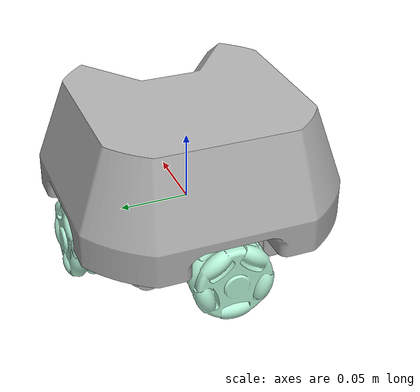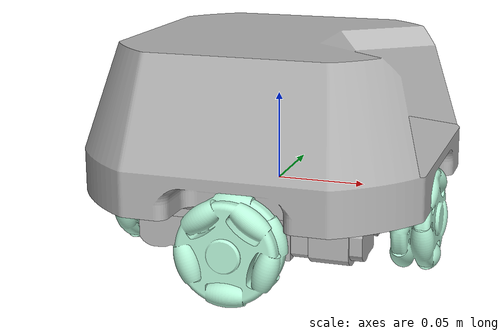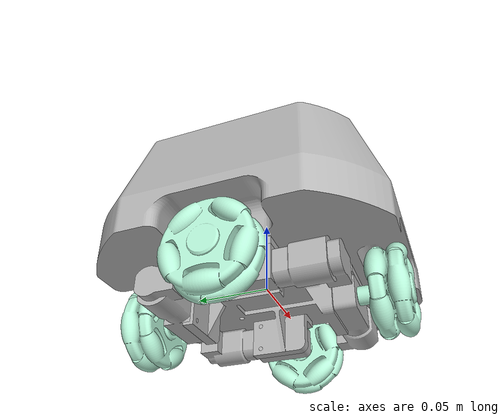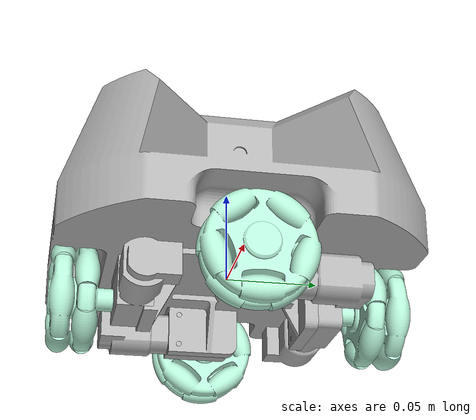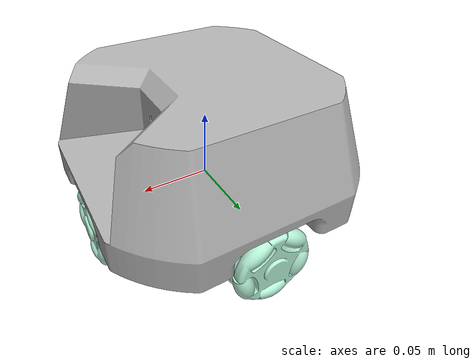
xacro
<?xml version="1.0" ?>
<robot name="mini_omni" xmlns:xacro="http://www.ros.org/wiki/xacro">
  <material name="silver">
    <color rgba="0.700 0.700 0.700 1.000"/>
  </material>
  <material name="green">
    <color rgba="0.71 0.95 0.84 1.0"/>
  </material>
  <link name="base_link">
    <inertial>
      <origin xyz="-0.005145812541385679 -7.638930890681272e-07 0.03779646096221236" rpy="0 0 0"/>
      <mass value="17.060669540235605"/>
      <inertia ixx="0.051413" iyy="0.045565" izz="0.077797" ixy="0.0" iyz="-1e-06" ixz="0.001401"/>
    </inertial>
    <visual>
      <origin xyz="0 0 0" rpy="0 0 0"/>
      <geometry>
        <mesh filename="package://mini_omni/meshes/base_link.stl" scale="0.001 0.001 0.001"/>
      </geometry>
      <material name="silver"/>
    </visual>
    <collision>
      <origin xyz="0 0 0" rpy="0 0 0"/>
      <geometry>
        <mesh filename="package://mini_omni/meshes/base_link.stl" scale="0.001 0.001 0.001"/>
      </geometry>
    </collision>
  </link>

  <link name="m1_1">
    <inertial>
      <origin xyz="0.01054921147026934 0.008028074931659187 -0.008599978168810276" rpy="0 0 0"/>
      <mass value="0.25963404717991184"/>
      <inertia ixx="0.000137" iyy="2e-05" izz="0.000137" ixy="8e-06" iyz="-0.0" ixz="-0.0"/>
    </inertial>
    <visual>
      <origin xyz="-0.03994 -0.0198 0.0073" rpy="0 0 0"/>
      <geometry>
        <mesh filename="package://mini_omni/meshes/m1_1.stl" scale="0.001 0.001 0.001"/>
      </geometry>
      <material name="silver"/>
    </visual>
    <collision>
      <origin xyz="-0.03994 -0.0198 0.0073" rpy="0 0 0"/>
      <geometry>
        <mesh filename="package://mini_omni/meshes/m1_1.stl" scale="0.001 0.001 0.001"/>
      </geometry>
    </collision>
  </link>

  <link name="m2_1">
    <inertial>
      <origin xyz="0.008028074931659034 -0.010549211470269486 -0.00859997816881029" rpy="0 0 0"/>
      <mass value="0.25963404717991184"/>
      <inertia ixx="2e-05" iyy="0.000137" izz="0.000137" ixy="-8e-06" iyz="0.0" ixz="-0.0"/>
    </inertial>
    <visual>
      <origin xyz="-0.0198 0.03994 0.0073" rpy="0 0 0"/>
      <geometry>
        <mesh filename="package://mini_omni/meshes/m2_1.stl" scale="0.001 0.001 0.001"/>
      </geometry>
      <material name="silver"/>
    </visual>
    <collision>
      <origin xyz="-0.0198 0.03994 0.0073" rpy="0 0 0"/>
      <geometry>
        <mesh filename="package://mini_omni/meshes/m2_1.stl" scale="0.001 0.001 0.001"/>
      </geometry>
    </collision>
  </link>

<link name="m4_1">
  <inertial>
    <origin xyz="-0.008028074931659017 0.010549211470269465 0.008600021831190123" rpy="0 0 0"/>
    <mass value="0.25963404717991184"/>
    <inertia ixx="2e-05" iyy="0.000137" izz="0.000137" ixy="-8e-06" iyz="-0.0" ixz="0.0"/>
  </inertial>
  <visual>
    <origin xyz="0.0198 -0.03994 0.0245" rpy="0 0 0"/>
    <geometry>
      <mesh filename="package://mini_omni/meshes/m4_1.stl" scale="0.001 0.001 0.001"/>
    </geometry>
    <material name="silver"/>
  </visual>
  <collision>
    <origin xyz="0.0198 -0.03994 0.0245" rpy="0 0 0"/>
    <geometry>
      <mesh filename="package://mini_omni/meshes/m4_1.stl" scale="0.001 0.001 0.001"/>
    </geometry>
  </collision>
</link>

<link name="m3_1">
  <inertial>
    <origin xyz="-0.010549211470269396 -0.008028074931659183 -0.008599978168810321" rpy="0 0 0"/>
    <mass value="0.25963404717991184"/>
    <inertia ixx="0.000137" iyy="2e-05" izz="0.000137" ixy="8e-06" iyz="0.0" ixz="0.0"/>
  </inertial>
  <visual>
    <origin xyz="0.03994 0.0198 0.0073" rpy="0 0 0"/>
    <geometry>
      <mesh filename="package://mini_omni/meshes/m3_1.stl" scale="0.001 0.001 0.001"/>
    </geometry>
    <material name="silver"/>
  </visual>
  <collision>
    <origin xyz="0.03994 0.0198 0.0073" rpy="0 0 0"/>
    <geometry>
      <mesh filename="package://mini_omni/meshes/m3_1.stl" scale="0.001 0.001 0.001"/>
    </geometry>
  </collision>
</link>

<link name="w4_1">
  <inertial>
    <origin xyz="1.9295475332023588e-09 0.012176435771347485 1.6744108426169912e-09" rpy="0 0 0"/>
    <mass value="0.36553443900128696"/>
    <inertia ixx="8.9e-05" iyy="0.00014" izz="8.9e-05" ixy="-0.0" iyz="-0.0" ixz="-0.0"/>
  </inertial>
  <visual>
    <origin xyz="-0.0 -0.06974 0.0159" rpy="0 0 0"/>
    <geometry>
      <mesh filename="package://mini_omni/meshes/w4_1.stl" scale="0.001 0.001 0.001"/>
    </geometry>
    <material name="green"/>
  </visual>
  <collision>
    <origin xyz="-0.0 -0.06974 0.0159" rpy="0 0 0"/>
    <geometry>
      <mesh filename="package://mini_omni/meshes/w4_1.stl" scale="0.001 0.001 0.001"/>
    </geometry>
  </collision>
</link>

<link name="w3_1">
  <inertial>
    <origin xyz="-0.012176435771347832 1.929547367526829e-09 1.6744103950583344e-09" rpy="0 0 0"/>
    <mass value="0.36553443900128696"/>
    <inertia ixx="0.00014" iyy="8.9e-05" izz="8.9e-05" ixy="0.0" iyz="-0.0" ixz="0.0"/>
  </inertial>
  <visual>
    <origin xyz="0.06974 -0.0 0.0159" rpy="0 0 0"/>
    <geometry>
      <mesh filename="package://mini_omni/meshes/w3_1.stl" scale="0.001 0.001 0.001"/>
    </geometry>
    <material name="green"/>
  </visual>
  <collision>
    <origin xyz="0.06974 -0.0 0.0159" rpy="0 0 0"/>
    <geometry>
      <mesh filename="package://mini_omni/meshes/w3_1.stl" scale="0.001 0.001 0.001"/>
    </geometry>
  </collision>
</link>

<link name="w2_1">
  <inertial>
    <origin xyz="-1.92954749323433e-09 -0.012176435771347555 1.674410429752804e-09" rpy="0 0 0"/>
    <mass value="0.36553443900128696"/>
    <inertia ixx="8.9e-05" iyy="0.00014" izz="8.9e-05" ixy="-0.0" iyz="0.0" ixz="0.0"/>
  </inertial>
  <visual>
    <origin xyz="0.0 0.06974 0.0159" rpy="0 0 0"/>
    <geometry>
      <mesh filename="package://mini_omni/meshes/w2_1.stl" scale="0.001 0.001 0.001"/>
    </geometry>
    <material name="green"/>
  </visual>
  <collision>
    <origin xyz="0.0 0.06974 0.0159" rpy="0 0 0"/>
    <geometry>
      <mesh filename="package://mini_omni/meshes/w2_1.stl" scale="0.001 0.001 0.001"/>
    </geometry>
  </collision>
</link>

<link name="w1_1">
  <inertial>
    <origin xyz="0.012176435771347804 -1.9295472439111125e-09 1.6744104366916979e-09" rpy="0 0 0"/>
    <mass value="0.36553443900128696"/>
    <inertia ixx="0.00014" iyy="8.9e-05" izz="8.9e-05" ixy="0.0" iyz="0.0" ixz="-0.0"/>
  </inertial>
  <visual>
    <origin xyz="-0.06974 0.0 0.0159" rpy="0 0 0"/>
    <geometry>
      <mesh filename="package://mini_omni/meshes/w1_1.stl" scale="0.001 0.001 0.001"/>
    </geometry>
    <material name="green"/>
  </visual>
  <collision>
    <origin xyz="-0.06974 0.0 0.0159" rpy="0 0 0"/>
    <geometry>
      <mesh filename="package://mini_omni/meshes/w1_1.stl" scale="0.001 0.001 0.001"/>
    </geometry>
  </collision>
</link>

<joint name="base_link_to_m1" type="fixed">
  <origin xyz="0.03994 0.0198 -0.0073" rpy="0 0 0"/>
  <parent link="base_link"/>
  <child link="m1_1"/>
</joint>

<joint name="base_link_to_m2" type="fixed">
  <origin xyz="0.0198 -0.03994 -0.0073" rpy="0 0 0"/>
  <parent link="base_link"/>
  <child link="m2_1"/>
</joint>

<joint name="base_link_to_m4" type="fixed">
  <origin xyz="-0.0198 0.03994 -0.0245" rpy="0 0 0"/>
  <parent link="base_link"/>
  <child link="m4_1"/>
</joint>

<joint name="base_link_to_m3" type="fixed">
  <origin xyz="-0.03994 -0.0198 -0.0073" rpy="0 0 0"/>
  <parent link="base_link"/>
  <child link="m3_1"/>
</joint>

<joint name="w4_to_m4" type="continuous">
  <origin xyz="0.0198 0.0298 0.0086" rpy="0 0 0"/>
  <parent link="m4_1"/>
  <child link="w4_1"/>
  <axis xyz="0.0 1.0 -0.0"/>
</joint>

<joint name="w3_to_m3" type="continuous">
  <origin xyz="-0.0298 0.0198 -0.0086" rpy="0 0 0"/>
  <parent link="m3_1"/>
  <child link="w3_1"/>
  <axis xyz="-1.0 0.0 0.0"/>
</joint>

<joint name="w2_to_m2" type="continuous">
  <origin xyz="-0.0198 -0.0298 -0.0086" rpy="0 0 0"/>
  <parent link="m2_1"/>
  <child link="w2_1"/>
  <axis xyz="-0.0 -1.0 0.0"/>
</joint>

<joint name="w1_to_m1" type="continuous">
  <origin xyz="0.0298 -0.0198 -0.0086" rpy="0 0 0"/>
  <parent link="m1_1"/>
  <child link="w1_1"/>
  <axis xyz="1.0 -0.0 0.0"/>
</joint>

</robot>
